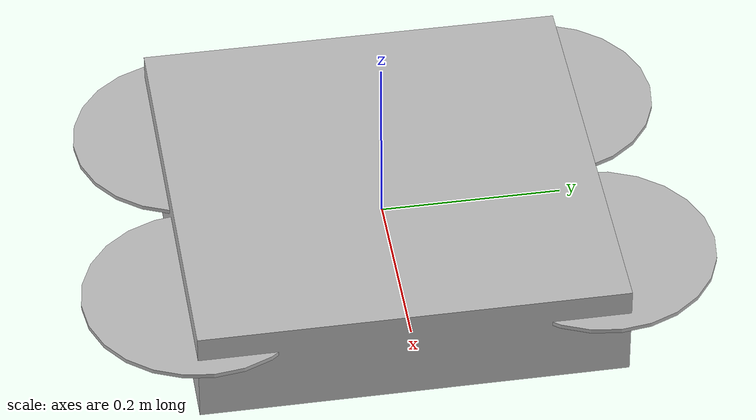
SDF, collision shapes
<sdf version='1.5'>
  <model name='iris_r200'>
    <plugin name="vision_plugin" filename="libgazebo_vision_plugin.so">
        <robotNamespace></robotNamespace>
        <pub_rate>30</pub_rate>
        <random_walk>1.0</random_walk>
        <noise_density>0.0005</noise_density>
        <corellation_time>60.0</corellation_time>
    </plugin>

    <include>
      <uri>model://iris</uri>
    </include>

    <!--r200 camera-->
    <include>
      <uri>model://r200</uri>
      <pose>0.1 0 0 0 0 0</pose>
    </include>

    <joint name="r200_joint" type="fixed">
      <parent>iris::base_link</parent>
      <child>r200::link</child>
    </joint>

    <!--bottom camera-->
    <include>
      <uri>model://bottom_cam</uri>
      <pose>0.07 0 -0.03 0 1.57079632679 1.57079632679</pose>
    </include>

    <joint name="bottom_joint" type="fixed">
      <parent>iris::base_link</parent>
      <child>bottom_cam::link</child>
    </joint>
  </model>
</sdf>

<!-- vim: set et ft=xml fenc=utf-8 ff=unix sts=0 sw=2 ts=2 : -->

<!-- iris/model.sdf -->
<!-- DO NOT EDIT: Generated from iris.sdf.jinja -->
<sdf version='1.6'>
  <model name='iris'>
    <link name='base_link'>
      <pose>0 0 0 0 0 0</pose>
      <inertial>
        <pose>0 0 0 0 0 0</pose>
        <mass>1.5</mass>
        <inertia>
          <ixx>0.029125</ixx>
          <ixy>0</ixy>
          <ixz>0</ixz>
          <iyy>0.029125</iyy>
          <iyz>0</iyz>
          <izz>0.055225</izz>
        </inertia>
      </inertial>
      <collision name='base_link_inertia_collision'>
        <pose>0 0 0 0 0 0</pose>
        <geometry>
          <box>
            <size>0.47 0.47 0.11</size>
          </box>
        </geometry>
        <surface>
          <contact>
            <ode>
              <min_depth>0.001</min_depth>
              <max_vel>0</max_vel>
            </ode>
          </contact>
          <friction>
            <ode/>
          </friction>
        </surface>
      </collision>
      <visual name='base_link_inertia_visual'>
        <pose>0 0 0 0 0 0</pose>
        <geometry>
          <mesh>
            <scale>1 1 1</scale>
            <uri>model://iris/meshes/iris.stl</uri>
          </mesh>
        </geometry>
      </visual>
      <gravity>1</gravity>
      <velocity_decay/>
    </link>
    <link name='/imu_link'>
      <pose>0 0 0 0 0 0</pose>
      <inertial>
        <pose>0 0 0 0 0 0</pose>
        <mass>0.015</mass>
        <inertia>
          <ixx>1e-05</ixx>
          <ixy>0</ixy>
          <ixz>0</ixz>
          <iyy>1e-05</iyy>
          <iyz>0</iyz>
          <izz>1e-05</izz>
        </inertia>
      </inertial>
    </link>
    <joint name='/imu_joint' type='revolute'>
      <child>/imu_link</child>
      <parent>base_link</parent>
      <axis>
        <xyz>1 0 0</xyz>
        <limit>
          <lower>0</lower>
          <upper>0</upper>
          <effort>0</effort>
          <velocity>0</velocity>
        </limit>
        <dynamics>
          <spring_reference>0</spring_reference>
          <spring_stiffness>0</spring_stiffness>
        </dynamics>
        <use_parent_model_frame>1</use_parent_model_frame>
      </axis>
    </joint>
    <link name='rotor_0'>
      <pose>0.13 -0.22 0.023 0 0 0</pose>
      <inertial>
        <pose>0 0 0 0 0 0</pose>
        <mass>0.005</mass>
        <inertia>
          <ixx>9.75e-07</ixx>
          <ixy>0</ixy>
          <ixz>0</ixz>
          <iyy>0.000273104</iyy>
          <iyz>0</iyz>
          <izz>0.000274004</izz>
        </inertia>
      </inertial>
      <collision name='rotor_0_collision'>
        <pose>0 0 0 0 0 0</pose>
        <geometry>
          <cylinder>
            <length>0.005</length>
            <radius>0.128</radius>
          </cylinder>
        </geometry>
        <surface>
          <contact>
            <ode/>
          </contact>
          <friction>
            <ode/>
          </friction>
        </surface>
      </collision>
      <visual name='rotor_0_visual'>
        <pose>0 0 0 0 0 0</pose>
        <geometry>
          <mesh>
            <scale>1 1 1</scale>
            <uri>model://iris/meshes/iris_prop_ccw.dae</uri>
          </mesh>
        </geometry>
      </visual>
      <gravity>1</gravity>
      <velocity_decay/>
    </link>
    <joint name='rotor_0_joint' type='revolute'>
      <child>rotor_0</child>
      <parent>base_link</parent>
      <axis>
        <xyz>0 0 1</xyz>
        <limit>
          <lower>-1e+16</lower>
          <upper>1e+16</upper>
        </limit>
        <dynamics>
          <spring_reference>0</spring_reference>
          <spring_stiffness>0</spring_stiffness>
        </dynamics>
        <use_parent_model_frame>1</use_parent_model_frame>
      </axis>
    </joint>
    <link name='rotor_1'>
      <pose>-0.13 0.2 0.023 0 0 0</pose>
      <inertial>
        <pose>0 0 0 0 0 0</pose>
        <mass>0.005</mass>
        <inertia>
          <ixx>9.75e-07</ixx>
          <ixy>0</ixy>
          <ixz>0</ixz>
          <iyy>0.000273104</iyy>
          <iyz>0</iyz>
          <izz>0.000274004</izz>
        </inertia>
      </inertial>
      <collision name='rotor_1_collision'>
        <pose>0 0 0 0 0 0</pose>
        <geometry>
          <cylinder>
            <length>0.005</length>
            <radius>0.128</radius>
          </cylinder>
        </geometry>
        <surface>
          <contact>
            <ode/>
          </contact>
          <friction>
            <ode/>
          </friction>
        </surface>
      </collision>
      <visual name='rotor_1_visual'>
        <pose>0 0 0 0 0 0</pose>
        <geometry>
          <mesh>
            <scale>1 1 1</scale>
            <uri>model://iris/meshes/iris_prop_ccw.dae</uri>
          </mesh>
        </geometry>
      </visual>
      <gravity>1</gravity>
      <velocity_decay/>
    </link>
    <joint name='rotor_1_joint' type='revolute'>
      <child>rotor_1</child>
      <parent>base_link</parent>
      <axis>
        <xyz>0 0 1</xyz>
        <limit>
          <lower>-1e+16</lower>
          <upper>1e+16</upper>
        </limit>
        <dynamics>
          <spring_reference>0</spring_reference>
          <spring_stiffness>0</spring_stiffness>
        </dynamics>
        <use_parent_model_frame>1</use_parent_model_frame>
      </axis>
    </joint>
    <link name='rotor_2'>
      <pose>0.13 0.22 0.023 0 0 0</pose>
      <inertial>
        <pose>0 0 0 0 0 0</pose>
        <mass>0.005</mass>
        <inertia>
          <ixx>9.75e-07</ixx>
          <ixy>0</ixy>
          <ixz>0</ixz>
          <iyy>0.000273104</iyy>
          <iyz>0</iyz>
          <izz>0.000274004</izz>
        </inertia>
      </inertial>
      <collision name='rotor_2_collision'>
        <pose>0 0 0 0 0 0</pose>
        <geometry>
          <cylinder>
            <length>0.005</length>
            <radius>0.128</radius>
          </cylinder>
        </geometry>
        <surface>
          <contact>
            <ode/>
          </contact>
          <friction>
            <ode/>
          </friction>
        </surface>
      </collision>
      <visual name='rotor_2_visual'>
        <pose>0 0 0 0 0 0</pose>
        <geometry>
          <mesh>
            <scale>1 1 1</scale>
            <uri>model://iris/meshes/iris_prop_cw.dae</uri>
          </mesh>
        </geometry>
      </visual>
      <gravity>1</gravity>
      <velocity_decay/>
    </link>
    <joint name='rotor_2_joint' type='revolute'>
      <child>rotor_2</child>
      <parent>base_link</parent>
      <axis>
        <xyz>0 0 1</xyz>
        <limit>
          <lower>-1e+16</lower>
          <upper>1e+16</upper>
        </limit>
        <dynamics>
          <spring_reference>0</spring_reference>
          <spring_stiffness>0</spring_stiffness>
        </dynamics>
        <use_parent_model_frame>1</use_parent_model_frame>
      </axis>
    </joint>
    <link name='rotor_3'>
      <pose>-0.13 -0.2 0.023 0 0 0</pose>
      <inertial>
        <pose>0 0 0 0 0 0</pose>
        <mass>0.005</mass>
        <inertia>
          <ixx>9.75e-07</ixx>
          <ixy>0</ixy>
          <ixz>0</ixz>
          <iyy>0.000273104</iyy>
          <iyz>0</iyz>
          <izz>0.000274004</izz>
        </inertia>
      </inertial>
      <collision name='rotor_3_collision'>
        <pose>0 0 0 0 0 0</pose>
        <geometry>
          <cylinder>
            <length>0.005</length>
            <radius>0.128</radius>
          </cylinder>
        </geometry>
        <surface>
          <contact>
            <ode/>
          </contact>
          <friction>
            <ode/>
          </friction>
        </surface>
      </collision>
      <visual name='rotor_3_visual'>
        <pose>0 0 0 0 0 0</pose>
        <geometry>
          <mesh>
            <scale>1 1 1</scale>
            <uri>model://iris/meshes/iris_prop_cw.dae</uri>
          </mesh>
        </geometry>
      </visual>
      <gravity>1</gravity>
      <velocity_decay/>
    </link>
    <joint name='rotor_3_joint' type='revolute'>
      <child>rotor_3</child>
      <parent>base_link</parent>
      <axis>
        <xyz>0 0 1</xyz>
        <limit>
          <lower>-1e+16</lower>
          <upper>1e+16</upper>
        </limit>
        <dynamics>
          <spring_reference>0</spring_reference>
          <spring_stiffness>0</spring_stiffness>
        </dynamics>
        <use_parent_model_frame>1</use_parent_model_frame>
      </axis>
    </joint>
    <plugin name='rosbag' filename='libgazebo_multirotor_base_plugin.so'>
      <robotNamespace/>
      <linkName>base_link</linkName>
      <rotorVelocitySlowdownSim>10</rotorVelocitySlowdownSim>
    </plugin>
    <plugin name='front_right_motor_model' filename='libgazebo_motor_model.so'>
      <robotNamespace/>
      <jointName>rotor_0_joint</jointName>
      <linkName>rotor_0</linkName>
      <turningDirection>ccw</turningDirection>
      <timeConstantUp>0.0125</timeConstantUp>
      <timeConstantDown>0.025</timeConstantDown>
      <maxRotVelocity>1100</maxRotVelocity>
      <motorConstant>5.84e-06</motorConstant>
      <momentConstant>0.06</momentConstant>
      <commandSubTopic>/gazebo/command/motor_speed</commandSubTopic>
      <motorNumber>0</motorNumber>
      <rotorDragCoefficient>0.000175</rotorDragCoefficient>
      <rollingMomentCoefficient>1e-06</rollingMomentCoefficient>
      <motorSpeedPubTopic>/motor_speed/0</motorSpeedPubTopic>
      <rotorVelocitySlowdownSim>10</rotorVelocitySlowdownSim>
    </plugin>
    <plugin name='back_left_motor_model' filename='libgazebo_motor_model.so'>
      <robotNamespace/>
      <jointName>rotor_1_joint</jointName>
      <linkName>rotor_1</linkName>
      <turningDirection>ccw</turningDirection>
      <timeConstantUp>0.0125</timeConstantUp>
      <timeConstantDown>0.025</timeConstantDown>
      <maxRotVelocity>1100</maxRotVelocity>
      <motorConstant>5.84e-06</motorConstant>
      <momentConstant>0.06</momentConstant>
      <commandSubTopic>/gazebo/command/motor_speed</commandSubTopic>
      <motorNumber>1</motorNumber>
      <rotorDragCoefficient>0.000175</rotorDragCoefficient>
      <rollingMomentCoefficient>1e-06</rollingMomentCoefficient>
      <motorSpeedPubTopic>/motor_speed/1</motorSpeedPubTopic>
      <rotorVelocitySlowdownSim>10</rotorVelocitySlowdownSim>
    </plugin>
    <plugin name='front_left_motor_model' filename='libgazebo_motor_model.so'>
      <robotNamespace/>
      <jointName>rotor_2_joint</jointName>
      <linkName>rotor_2</linkName>
      <turningDirection>cw</turningDirection>
      <timeConstantUp>0.0125</timeConstantUp>
      <timeConstantDown>0.025</timeConstantDown>
      <maxRotVelocity>1100</maxRotVelocity>
      <motorConstant>5.84e-06</motorConstant>
      <momentConstant>0.06</momentConstant>
      <commandSubTopic>/gazebo/command/motor_speed</commandSubTopic>
      <motorNumber>2</motorNumber>
      <rotorDragCoefficient>0.000175</rotorDragCoefficient>
      <rollingMomentCoefficient>1e-06</rollingMomentCoefficient>
      <motorSpeedPubTopic>/motor_speed/2</motorSpeedPubTopic>
      <rotorVelocitySlowdownSim>10</rotorVelocitySlowdownSim>
    </plugin>
    <plugin name='back_right_motor_model' filename='libgazebo_motor_model.so'>
      <robotNamespace/>
      <jointName>rotor_3_joint</jointName>
      <linkName>rotor_3</linkName>
      <turningDirection>cw</turningDirection>
      <timeConstantUp>0.0125</timeConstantUp>
      <timeConstantDown>0.025</timeConstantDown>
      <maxRotVelocity>1100</maxRotVelocity>
      <motorConstant>5.84e-06</motorConstant>
      <momentConstant>0.06</momentConstant>
      <commandSubTopic>/gazebo/command/motor_speed</commandSubTopic>
      <motorNumber>3</motorNumber>
      <rotorDragCoefficient>0.000175</rotorDragCoefficient>
      <rollingMomentCoefficient>1e-06</rollingMomentCoefficient>
      <motorSpeedPubTopic>/motor_speed/3</motorSpeedPubTopic>
      <rotorVelocitySlowdownSim>10</rotorVelocitySlowdownSim>
    </plugin>
    <model name='gps0'>
      <link name='link'>
        <pose>0 0 0 0 0 0</pose>
        <inertial>
          <pose>0 0 0 0 0 0</pose>
          <mass>0.01</mass>
          <inertia>
            <ixx>2.1733e-06</ixx>
            <ixy>0</ixy>
            <ixz>0</ixz>
            <iyy>2.1733e-06</iyy>
            <iyz>0</iyz>
            <izz>1.8e-07</izz>
          </inertia>
        </inertial>
        <visual name='visual'>
          <geometry>
            <cylinder>
              <radius>0.01</radius>
              <length>0.002</length>
            </cylinder>
          </geometry>
        </visual>
        <sensor name='gps' type='gps'>
          <pose>0 0 0 0 0 0</pose>
          <plugin name='gps_plugin' filename='libgazebo_gps_plugin.so'>
            <robotNamespace/>
            <gpsNoise>1</gpsNoise>
            <gpsXYRandomWalk>2.0</gpsXYRandomWalk>
            <gpsZRandomWalk>4.0</gpsZRandomWalk>
            <gpsXYNoiseDensity>0.0002</gpsXYNoiseDensity>
            <gpsZNoiseDensity>0.0004</gpsZNoiseDensity>
            <gpsVXYNoiseDensity>0.2</gpsVXYNoiseDensity>
            <gpsVZNoiseDensity>0.4</gpsVZNoiseDensity>
          </plugin>
        </sensor>
      </link>
    </model>
    <joint name='gps0_joint' type='fixed'>
      <parent>base_link</parent>
      <child>gps0::link</child>
    </joint>
    <plugin name='groundtruth_plugin' filename='libgazebo_groundtruth_plugin.so'>
      <robotNamespace/>
    </plugin>
    <plugin name='magnetometer_plugin' filename='libgazebo_magnetometer_plugin.so'>
      <robotNamespace/>
      <pubRate>100</pubRate>
      <noiseDensity>0.0004</noiseDensity>
      <randomWalk>6.4e-06</randomWalk>
      <biasCorrelationTime>600</biasCorrelationTime>
      <magTopic>/mag</magTopic>
    </plugin>
    <plugin name='barometer_plugin' filename='libgazebo_barometer_plugin.so'>
      <robotNamespace/>
      <pubRate>50</pubRate>
      <baroTopic>/baro</baroTopic>
      <baroDriftPaPerSec>0</baroDriftPaPerSec>
    </plugin>
    <plugin name='mavlink_interface' filename='libgazebo_mavlink_interface.so'>
      <robotNamespace/>
      <imuSubTopic>/imu</imuSubTopic>
      <magSubTopic>/mag</magSubTopic>
      <baroSubTopic>/baro</baroSubTopic>
      <mavlink_addr>INADDR_ANY</mavlink_addr>
      <mavlink_tcp_port>{{ mavlink_tcp_port }}</mavlink_tcp_port>
      <mavlink_udp_port>{{ mavlink_udp_port }}</mavlink_udp_port>
      <serialEnabled>{{ serial_enabled }}</serialEnabled>
      <serialDevice>{{ serial_device }}</serialDevice>
      <baudRate>{{ serial_baudrate }}</baudRate>
      <qgc_addr>INADDR_ANY</qgc_addr>
      <qgc_udp_port>14550</qgc_udp_port>
      <sdk_addr>INADDR_ANY</sdk_addr>
      <sdk_udp_port>14540</sdk_udp_port>
      <hil_mode>{{ hil_mode }}</hil_mode>
      <hil_state_level>0</hil_state_level>
      <send_vision_estimation>0</send_vision_estimation>
      <send_odometry>1</send_odometry>
      <enable_lockstep>1</enable_lockstep>
      <use_tcp>1</use_tcp>
      <motorSpeedCommandPubTopic>/gazebo/command/motor_speed</motorSpeedCommandPubTopic>
      <control_channels>
        <channel name='rotor1'>
          <input_index>0</input_index>
          <input_offset>0</input_offset>
          <input_scaling>1000</input_scaling>
          <zero_position_disarmed>0</zero_position_disarmed>
          <zero_position_armed>100</zero_position_armed>
          <joint_control_type>velocity</joint_control_type>
        </channel>
        <channel name='rotor2'>
          <input_index>1</input_index>
          <input_offset>0</input_offset>
          <input_scaling>1000</input_scaling>
          <zero_position_disarmed>0</zero_position_disarmed>
          <zero_position_armed>100</zero_position_armed>
          <joint_control_type>velocity</joint_control_type>
        </channel>
        <channel name='rotor3'>
          <input_index>2</input_index>
          <input_offset>0</input_offset>
          <input_scaling>1000</input_scaling>
          <zero_position_disarmed>0</zero_position_disarmed>
          <zero_position_armed>100</zero_position_armed>
          <joint_control_type>velocity</joint_control_type>
        </channel>
        <channel name='rotor4'>
          <input_index>3</input_index>
          <input_offset>0</input_offset>
          <input_scaling>1000</input_scaling>
          <zero_position_disarmed>0</zero_position_disarmed>
          <zero_position_armed>100</zero_position_armed>
          <joint_control_type>velocity</joint_control_type>
        </channel>
        <channel name='rotor5'>
          <input_index>4</input_index>
          <input_offset>1</input_offset>
          <input_scaling>324.6</input_scaling>
          <zero_position_disarmed>0</zero_position_disarmed>
          <zero_position_armed>0</zero_position_armed>
          <joint_control_type>velocity</joint_control_type>
          <joint_control_pid>
            <p>0.1</p>
            <i>0</i>
            <d>0</d>
            <iMax>0.0</iMax>
            <iMin>0.0</iMin>
            <cmdMax>2</cmdMax>
            <cmdMin>-2</cmdMin>
          </joint_control_pid>
          <joint_name>zephyr_delta_wing::propeller_joint</joint_name>
        </channel>
        <channel name='rotor6'>
          <input_index>5</input_index>
          <input_offset>0</input_offset>
          <input_scaling>0.524</input_scaling>
          <zero_position_disarmed>0</zero_position_disarmed>
          <zero_position_armed>0</zero_position_armed>
          <joint_control_type>position</joint_control_type>
          <joint_name>zephyr_delta_wing::flap_left_joint</joint_name>
          <joint_control_pid>
            <p>10.0</p>
            <i>0</i>
            <d>0</d>
            <iMax>0</iMax>
            <iMin>0</iMin>
            <cmdMax>20</cmdMax>
            <cmdMin>-20</cmdMin>
          </joint_control_pid>
        </channel>
        <channel name='rotor7'>
          <input_index>6</input_index>
          <input_offset>0</input_offset>
          <input_scaling>0.524</input_scaling>
          <zero_position_disarmed>0</zero_position_disarmed>
          <zero_position_armed>0</zero_position_armed>
          <joint_control_type>position</joint_control_type>
          <joint_name>zephyr_delta_wing::flap_right_joint</joint_name>
          <joint_control_pid>
            <p>10.0</p>
            <i>0</i>
            <d>0</d>
            <iMax>0</iMax>
            <iMin>0</iMin>
            <cmdMax>20</cmdMax>
            <cmdMin>-20</cmdMin>
          </joint_control_pid>
        </channel>
        <channel name='rotor8'>
          <input_index>7</input_index>
          <input_offset>0</input_offset>
          <input_scaling>0.524</input_scaling>
          <zero_position_disarmed>0</zero_position_disarmed>
          <zero_position_armed>0</zero_position_armed>
          <joint_control_type>position</joint_control_type>
        </channel>
      </control_channels>
    </plugin>
    <static>0</static>
    <plugin name='rotors_gazebo_imu_plugin' filename='libgazebo_imu_plugin.so'>
      <robotNamespace/>
      <linkName>/imu_link</linkName>
      <imuTopic>/imu</imuTopic>
      <gyroscopeNoiseDensity>0.00018665</gyroscopeNoiseDensity>
      <gyroscopeRandomWalk>3.8785e-05</gyroscopeRandomWalk>
      <gyroscopeBiasCorrelationTime>1000.0</gyroscopeBiasCorrelationTime>
      <gyroscopeTurnOnBiasSigma>0.0087</gyroscopeTurnOnBiasSigma>
      <accelerometerNoiseDensity>0.00186</accelerometerNoiseDensity>
      <accelerometerRandomWalk>0.006</accelerometerRandomWalk>
      <accelerometerBiasCorrelationTime>300.0</accelerometerBiasCorrelationTime>
      <accelerometerTurnOnBiasSigma>0.196</accelerometerTurnOnBiasSigma>
    </plugin>
  </model>
</sdf>

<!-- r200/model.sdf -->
<sdf version="1.5">
  <model name="r200">
    <link name="r200_link">
      <pose>0 0 0 0 0 0</pose>
      <collision name="r200_collision">
        <geometry>
          <mesh>
            <uri>model://r200/meshes/r200.dae</uri>
            <scale>1 1 1</scale>
          </mesh>
        </geometry>
	<surface>
	  <friction>
	    <ode>
	      <mu>1.0</mu>
	      <mu2>1.0</mu2>
	    </ode>
	  </friction>
	</surface>
      </collision>
      <visual name="r200">
        <geometry>
          <mesh>
            <uri>model://r200/meshes/r200.dae</uri>
            <scale>1 1 1</scale>
          </mesh>
        </geometry>
        <cast_shadows>false</cast_shadows>
      </visual>
    </link>
    <static>true</static>
  </model>
</sdf>

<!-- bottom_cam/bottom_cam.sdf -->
<sdf version='1.6'>
    <model name='bottom_cam'>
    <pose>0 0 0 0 0 0</pose>
      <link name='link'>
        <inertial>
          <mass>0.015</mass>
          <inertia>
            <ixx>4.15e-6</ixx>
            <ixy>0</ixy>
            <ixz>0</ixz>
            <iyy>2.407e-6</iyy>
            <iyz>0</iyz>
            <izz>2.407e-6</izz>
          </inertia>
        </inertial>
        <collision name='collision'>
          <geometry>
            <box>
              <size>0.01 0.01 0.01</size>
            </box>
          </geometry>
          <max_contacts>10</max_contacts>
          <surface>
            <contact>
              <ode/>
            </contact>
            <bounce/>
            <friction>
              <ode/>
            </friction>
          </surface>
        </collision>
        <visual name='visual'>
          <geometry>
            <box>
              <size>0.01 0.01 0.01</size>
            </box>
          </geometry>
        </visual>
        <sensor name='camera' type='camera'>
          <camera name='bottom_cam'>
            <horizontal_fov>1.25328</horizontal_fov>
            <image>
              <width>640</width>
              <height>480</height>
            </image>
            <clip>
              <near>0.1</near>
              <far>100</far>
            </clip>
            <distortion>
              <k1>0.027520</k1>
              <k2>-0.064054</k2>
              <k3>0.0</k3>
              <p1>0.004263</p1>
              <p2>-0.000398</p2>
              <center>0.5 0.5</center>
            </distortion>
          </camera>
          <always_on>1</always_on>
          <update_rate>30</update_rate>
          <visualize>1</visualize>
          <plugin name='camera_plugin' filename='libgazebo_ros_camera.so'>
              <robotNamespace>/</robotNamespace>
            <alwaysOn>true</alwaysOn>
            <imageTopicName>/camera/mono/image_raw</imageTopicName>
            <cameraInfoTopicName>/camera/mono/camera_info</cameraInfoTopicName>
            <updateRate>30.0</updateRate>
            <cameraName>camera</cameraName>
            <frameName>camera_mono_optical_frame</frameName>
            <CxPrime>320.8</CxPrime>
            <Cx>320.8</Cx>
            <Cy>236.0</Cy>
            <hackBaseline>0</hackBaseline>
            <focalLength>442.000499</focalLength>
            <distortionK1>0.027520</distortionK1>
            <distortionK2>-0.064054</distortionK2>
            <distortionK3>0.0</distortionK3>
            <distortionT1>0.004263</distortionT1>
            <distortionT2>-0.000398</distortionT2>
          </plugin>
        </sensor>
        <self_collide>0</self_collide>
        <kinematic>0</kinematic>
      </link>
  </model>
</sdf>
